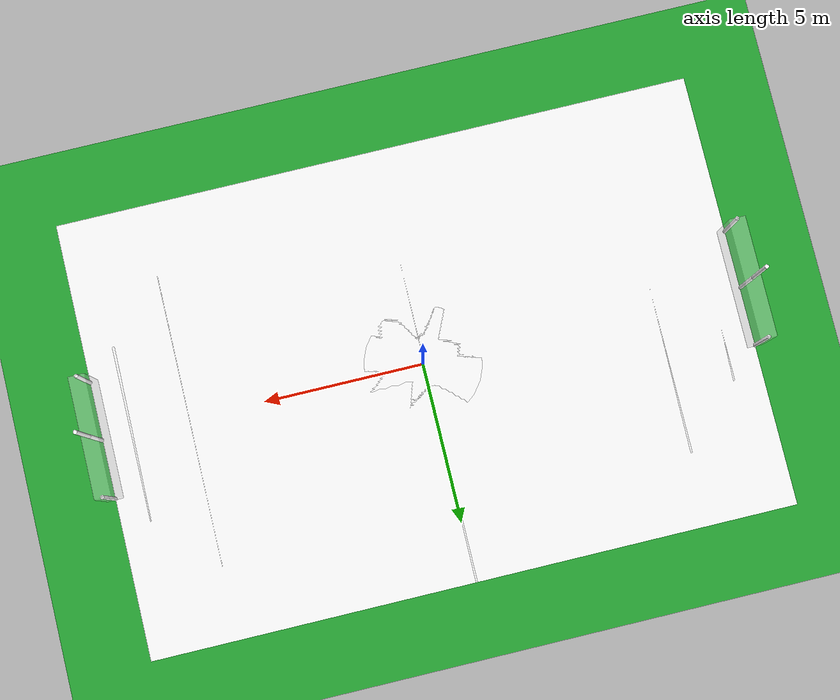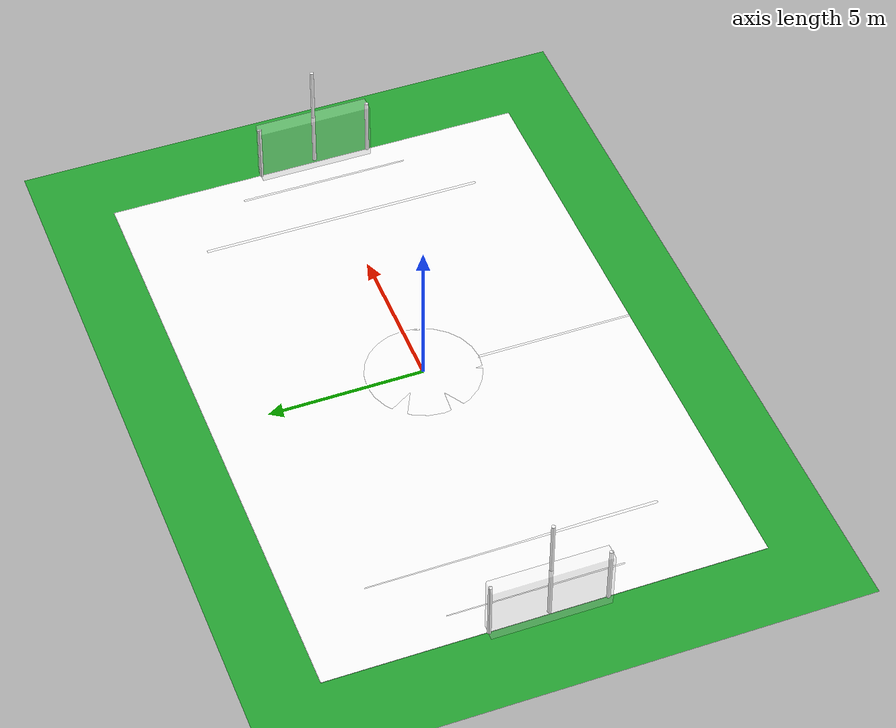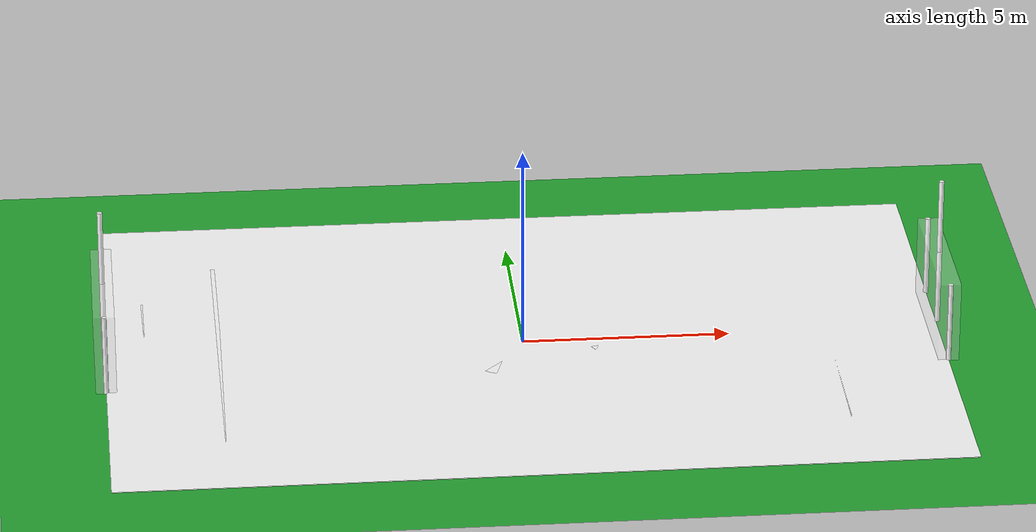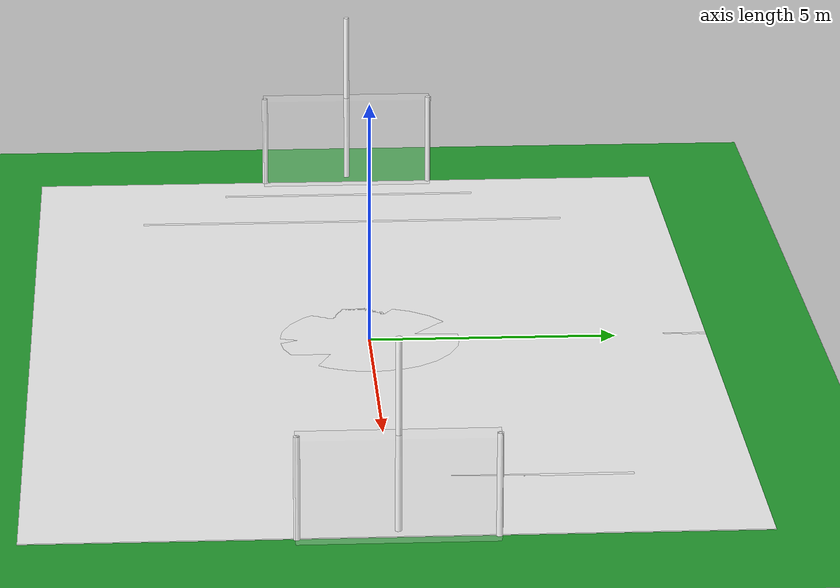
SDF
<?xml version="1.0"?>
<sdf version="1.6">
  <world name="football_world">

    <!-- Physics -->
    <physics name='default_physics' default='0' type='ode'>
      <gravity>0 0 -9.8066</gravity>
      <ode>
        <solver>
          <type>quick</type>
          <iters>10</iters>
          <sor>1.3</sor>
          <use_dynamic_moi_rescaling>0</use_dynamic_moi_rescaling>
        </solver>
        <constraints>
          <cfm>0</cfm>
          <erp>0.2</erp>
          <contact_max_correcting_vel>100</contact_max_correcting_vel>
          <contact_surface_layer>0.001</contact_surface_layer>
        </constraints>
      </ode>
      <max_step_size>0.001</max_step_size>
      <real_time_factor>1</real_time_factor>
      <real_time_update_rate>1000</real_time_update_rate>
    </physics>

    <!-- Scene -->
    <scene>
      <ambient>0.4 0.4 0.4 1</ambient>
      <background>0.7 0.7 0.7 1</background>
      <shadows>true</shadows>
    </scene>

    <!-- Sun -->
    <light name='sun' type='directional'>
      <cast_shadows>1</cast_shadows>
      <pose>0 0 10 0 0 0</pose>
      <diffuse>0.8 0.8 0.8 1</diffuse>
      <specular>0.2 0.2 0.2 1</specular>
      <attenuation>
        <range>1000</range>
        <constant>0.9</constant>
        <linear>0.01</linear>
        <quadratic>0.001</quadratic>
      </attenuation>
      <direction>-0.5 0.1 -0.9</direction>
    </light>

    <!-- Gazebo ROS state plugin: publishes /gazebo/model_states and
         provides the /gazebo/set_entity_state service used by the controllers -->
    <plugin name='gazebo_ros_state' filename='libgazebo_ros_state.so'>
      <ros>
        <namespace>/gazebo</namespace>
      </ros>
      <update_rate>10.0</update_rate>
    </plugin>

    <!-- Ground Plane -->
    <model name='ground_plane'>
      <static>1</static>
      <link name='link'>
        <collision name='collision'>
          <geometry>
            <plane>
              <normal>0 0 1</normal>
              <size>100 100</size>
            </plane>
          </geometry>
          <surface>
            <friction>
              <ode>
                <mu>100</mu>
                <mu2>50</mu2>
              </ode>
            </friction>
          </surface>
        </collision>
        <visual name='visual'>
          <cast_shadows>0</cast_shadows>
          <geometry>
            <plane>
              <normal>0 0 1</normal>
              <size>100 100</size>
            </plane>
          </geometry>
          <material>
            <script>
              <uri>file://media/materials/scripts/gazebo.default</uri>
              <name>Gazebo/Green</name>
            </script>
          </material>
        </visual>
      </link>
    </model>

    <!-- Football Field -->
    <model name='football_field'>
      <static>1</static>
      <pose>0 0 0.01 0 0 0</pose>
      <link name='field_link'>

        <!-- Field Lines - White -->
        <visual name='field_boundary'>
          <pose>0 0 0.001 0 0 0</pose>
          <geometry>
            <box>
              <size>20.16 13.72 0.02</size>
            </box>
          </geometry>
          <material>
            <ambient>1 1 1 1</ambient>
            <diffuse>1 1 1 1</diffuse>
            <specular>0 0 0 0</specular>
          </material>
        </visual>

        <!-- Center Line -->
        <visual name='center_line'>
          <pose>0 0 0.001 0 0 0</pose>
          <geometry>
            <box>
              <size>0.1 13.72 0.02</size>
            </box>
          </geometry>
          <material>
            <ambient>1 1 1 1</ambient>
            <diffuse>1 1 1 1</diffuse>
            <specular>0 0 0 0</specular>
          </material>
        </visual>

        <!-- Center Circle -->
        <visual name='center_circle'>
          <pose>0 0 0.001 0 0 0</pose>
          <geometry>
            <cylinder>
              <radius>1.83</radius>
              <length>0.02</length>
            </cylinder>
          </geometry>
          <material>
            <ambient>1 1 1 1</ambient>
            <diffuse>1 1 1 1</diffuse>
            <specular>0 0 0 0</specular>
          </material>
        </visual>

        <!-- Left Goal Area -->
        <visual name='left_goal_area'>
          <pose>-9.15 0 0.001 0 0 0</pose>
          <geometry>
            <box>
              <size>0.1 5.5 0.02</size>
            </box>
          </geometry>
          <material>
            <ambient>1 1 1 1</ambient>
            <diffuse>1 1 1 1</diffuse>
            <specular>0 0 0 0</specular>
          </material>
        </visual>

        <!-- Right Goal Area -->
        <visual name='right_goal_area'>
          <pose>9.15 0 0.001 0 0 0</pose>
          <geometry>
            <box>
              <size>0.1 5.5 0.02</size>
            </box>
          </geometry>
          <material>
            <ambient>1 1 1 1</ambient>
            <diffuse>1 1 1 1</diffuse>
            <specular>0 0 0 0</specular>
          </material>
        </visual>

        <!-- Left Penalty Area -->
        <visual name='left_penalty_area'>
          <pose>-7.32 0 0.001 0 0 0</pose>
          <geometry>
            <box>
              <size>0.1 9.16 0.02</size>
            </box>
          </geometry>
          <material>
            <ambient>1 1 1 1</ambient>
            <diffuse>1 1 1 1</diffuse>
            <specular>0 0 0 0</specular>
          </material>
        </visual>

        <!-- Right Penalty Area -->
        <visual name='right_penalty_area'>
          <pose>7.32 0 0.001 0 0 0</pose>
          <geometry>
            <box>
              <size>0.1 9.16 0.02</size>
            </box>
          </geometry>
          <material>
            <ambient>1 1 1 1</ambient>
            <diffuse>1 1 1 1</diffuse>
            <specular>0 0 0 0</specular>
          </material>
        </visual>

      </link>
    </model>

    <!-- Left Goal -->
    <model name='left_goal'>
      <static>1</static>
      <pose>-10.08 0 0 0 0 0</pose>
      <link name='goal_link'>
        <!-- Left Post -->
        <collision name='left_post_collision'>
          <pose>0 1.83 1 0 0 0</pose>
          <geometry>
            <cylinder>
              <radius>0.06</radius>
              <length>2</length>
            </cylinder>
          </geometry>
        </collision>
        <visual name='left_post_visual'>
          <pose>0 1.83 1 0 0 0</pose>
          <geometry>
            <cylinder>
              <radius>0.06</radius>
              <length>2</length>
            </cylinder>
          </geometry>
          <material>
            <ambient>1 1 1 1</ambient>
            <diffuse>1 1 1 1</diffuse>
          </material>
        </visual>

        <!-- Right Post -->
        <collision name='right_post_collision'>
          <pose>0 -1.83 1 0 0 0</pose>
          <geometry>
            <cylinder>
              <radius>0.06</radius>
              <length>2</length>
            </cylinder>
          </geometry>
        </collision>
        <visual name='right_post_visual'>
          <pose>0 -1.83 1 0 0 0</pose>
          <geometry>
            <cylinder>
              <radius>0.06</radius>
              <length>2</length>
            </cylinder>
          </geometry>
          <material>
            <ambient>1 1 1 1</ambient>
            <diffuse>1 1 1 1</diffuse>
          </material>
        </visual>

        <!-- Crossbar -->
        <collision name='crossbar_collision'>
          <pose>0 0 2 0 0 0</pose>
          <geometry>
            <cylinder>
              <radius>0.06</radius>
              <length>3.72</length>
            </cylinder>
          </geometry>
        </collision>
        <visual name='crossbar_visual'>
          <pose>0 0 2 0 0 0</pose>
          <geometry>
            <cylinder>
              <radius>0.06</radius>
              <length>3.72</length>
            </cylinder>
          </geometry>
          <material>
            <ambient>1 1 1 1</ambient>
            <diffuse>1 1 1 1</diffuse>
          </material>
        </visual>

        <!-- Net (visual only) -->
        <visual name='net_visual'>
          <pose>0 0 1 0 0 0</pose>
          <geometry>
            <box>
              <size>0.5 3.72 2</size>
            </box>
          </geometry>
          <material>
            <ambient>1 1 1 0.3</ambient>
            <diffuse>1 1 1 0.3</diffuse>
          </material>
        </visual>
      </link>
    </model>

    <!-- Right Goal -->
    <model name='right_goal'>
      <static>1</static>
      <pose>10.08 0 0 0 0 0</pose>
      <link name='goal_link'>
        <!-- Left Post -->
        <collision name='left_post_collision'>
          <pose>0 1.83 1 0 0 0</pose>
          <geometry>
            <cylinder>
              <radius>0.06</radius>
              <length>2</length>
            </cylinder>
          </geometry>
        </collision>
        <visual name='left_post_visual'>
          <pose>0 1.83 1 0 0 0</pose>
          <geometry>
            <cylinder>
              <radius>0.06</radius>
              <length>2</length>
            </cylinder>
          </geometry>
          <material>
            <ambient>1 1 1 1</ambient>
            <diffuse>1 1 1 1</diffuse>
          </material>
        </visual>

        <!-- Right Post -->
        <collision name='right_post_collision'>
          <pose>0 -1.83 1 0 0 0</pose>
          <geometry>
            <cylinder>
              <radius>0.06</radius>
              <length>2</length>
            </cylinder>
          </geometry>
        </collision>
        <visual name='right_post_visual'>
          <pose>0 -1.83 1 0 0 0</pose>
          <geometry>
            <cylinder>
              <radius>0.06</radius>
              <length>2</length>
            </cylinder>
          </geometry>
          <material>
            <ambient>1 1 1 1</ambient>
            <diffuse>1 1 1 1</diffuse>
          </material>
        </visual>

        <!-- Crossbar -->
        <collision name='crossbar_collision'>
          <pose>0 0 2 0 0 0</pose>
          <geometry>
            <cylinder>
              <radius>0.06</radius>
              <length>3.72</length>
            </cylinder>
          </geometry>
        </collision>
        <visual name='crossbar_visual'>
          <pose>0 0 2 0 0 0</pose>
          <geometry>
            <cylinder>
              <radius>0.06</radius>
              <length>3.72</length>
            </cylinder>
          </geometry>
          <material>
            <ambient>1 1 1 1</ambient>
            <diffuse>1 1 1 1</diffuse>
          </material>
        </visual>

        <!-- Net (visual only) -->
        <visual name='net_visual'>
          <pose>0 0 1 0 0 0</pose>
          <geometry>
            <box>
              <size>0.5 3.72 2</size>
            </box>
          </geometry>
          <material>
            <ambient>1 1 1 0.3</ambient>
            <diffuse>1 1 1 0.3</diffuse>
          </material>
        </visual>
      </link>
    </model>

    <!-- GUI -->
    <gui fullscreen='0'>
      <camera name='user_camera'>
        <pose>0 -15 8 0 0.8 0</pose>
        <view_controller>orbit</view_controller>
      </camera>
    </gui>

  </world>
</sdf>
